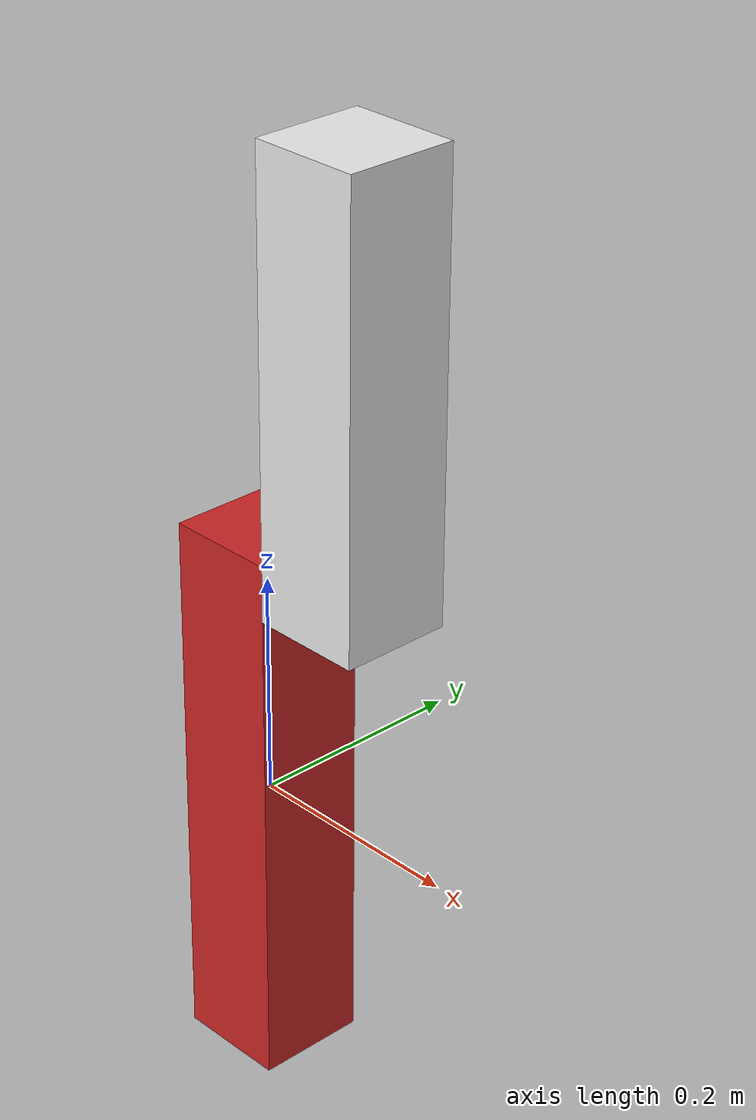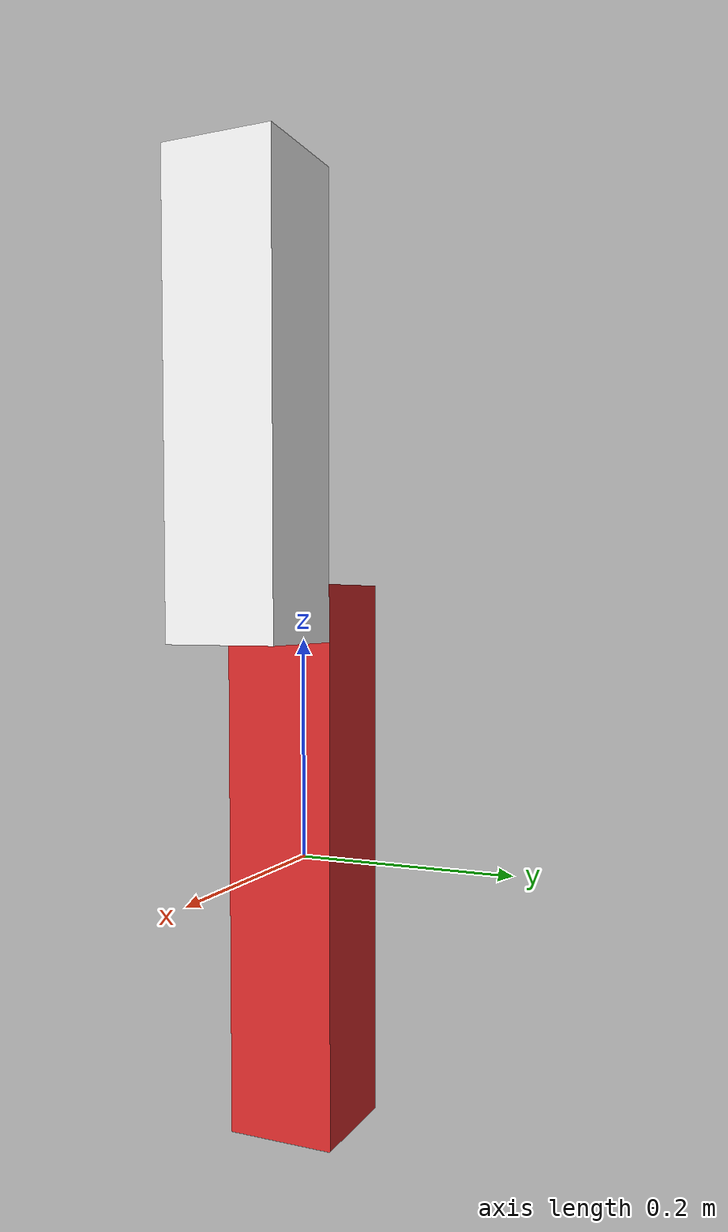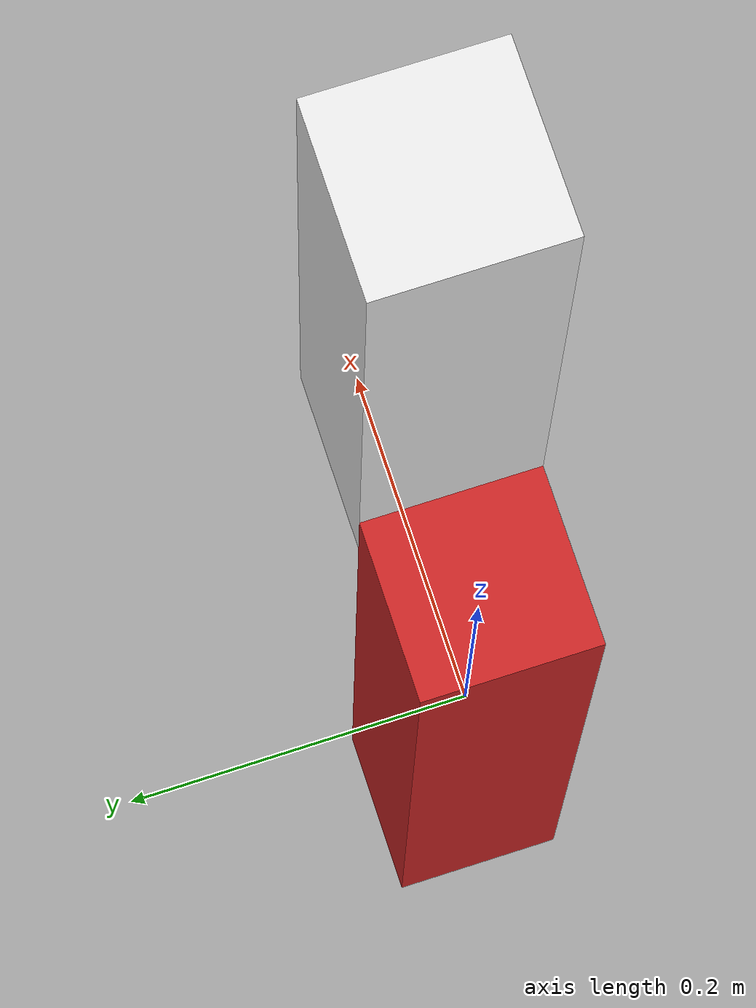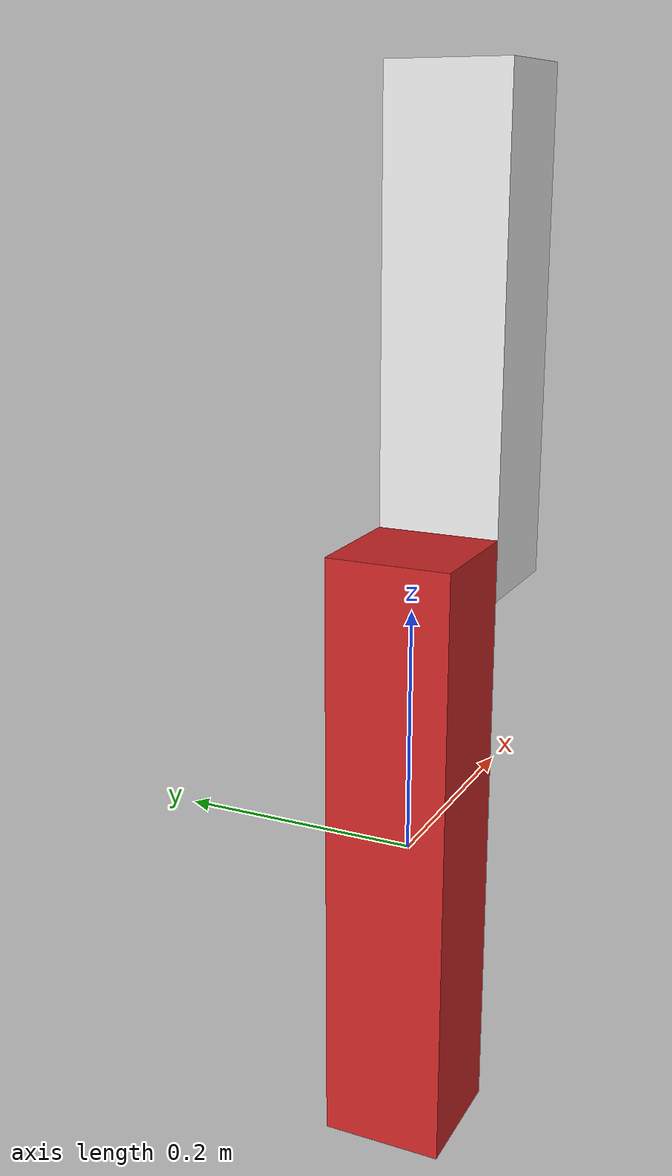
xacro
<?xml version="1.0"?>

<robot name="arm_1dof" xmlns:xacro="http://www.ros.org/wiki/xacro">

    <xacro:include filename="joints.xacro" />

    <material name="Black">
        <color rgba="0.0 0.0 0.0 1.0" />
    </material>
    <material name="Red">
        <color rgba="0.8 0.0 0.0 1.0" />
    </material>
    <material name="White">
        <color rgba="1.0 1.0 1.0 1.0" />
    </material>

    <link name="bottom_link">
        <visual>
            <origin rpy="0 0 0" xyz="0 0 0" />
            <geometry>
                <box size="0.1 0.1 0.5" />
            </geometry>
        </visual>
        <collision>
            <origin rpy="0 0 0" xyz="0 0 0" />
            <geometry>
                <box size="0.1 0.1 0.5" />
            </geometry>
        </collision>
        <inertial>
            <mass value="100" />
            <inertia ixx="0.03" iyy="0.03" izz="0.03" ixy="0.0" ixz="0.0" iyz="0.0" />
        </inertial>
    </link>

    <gazebo reference="bottom_link">
        <material>Gazebo/Red</material>
    </gazebo>

    <link name="top_link">
        <visual>
            <origin rpy="0 0 0" xyz="0.05 0 0.2" />
            <geometry>
                <box size="0.1 0.1 0.4" />
            </geometry>
        </visual>
        <collision>
            <origin rpy="0 0 0" xyz="0.05 0 0.2" />
            <geometry>
                <box size="0.1 0.1 0.4" />
            </geometry>
        </collision>
        <inertial>
            <mass value="0.1" />
            <inertia ixx="0.03" iyy="0.03" izz="0.03" ixy="0.0" ixz="0.0" iyz="0.0" />
        </inertial>
    </link>

    <gazebo reference="top_link">
        <material>Gazebo/White</material>
    </gazebo>

    <joint name="joint1" type="revolute" >
        <origin rpy="0 0 0" xyz="0.05 0 0.2" />
        <parent link="bottom_link" />
        <child link="top_link" />
        <axis xyz="1 0 0" />
        <limit effort="100.0" lower="-1.57" upper="1.57" velocity="1.0" />
    </joint>

    <xacro:config_ctr_gazebo />
</robot>
